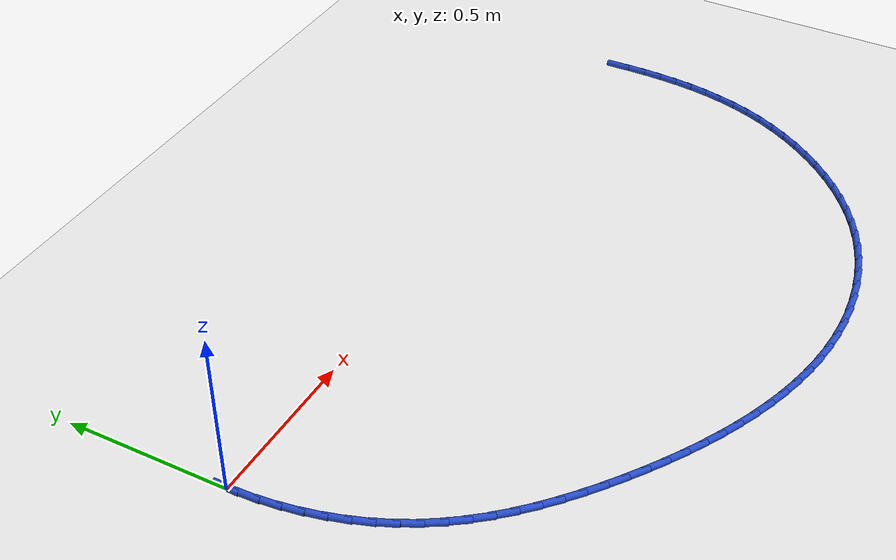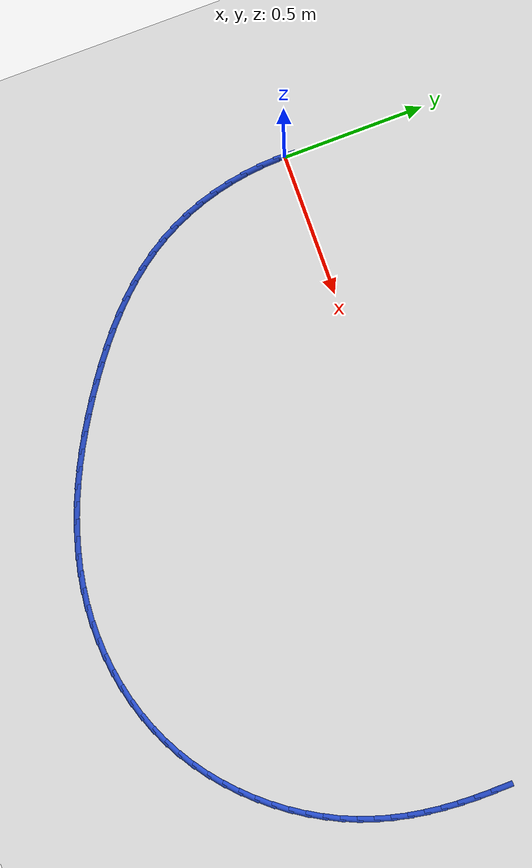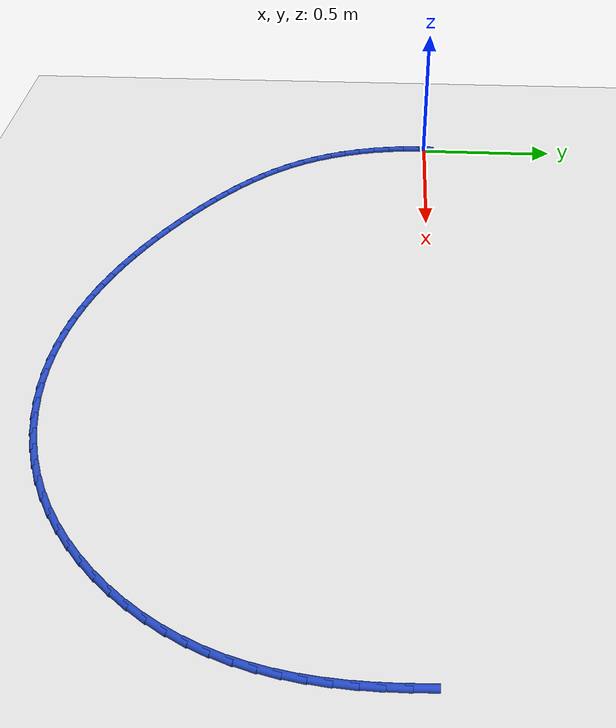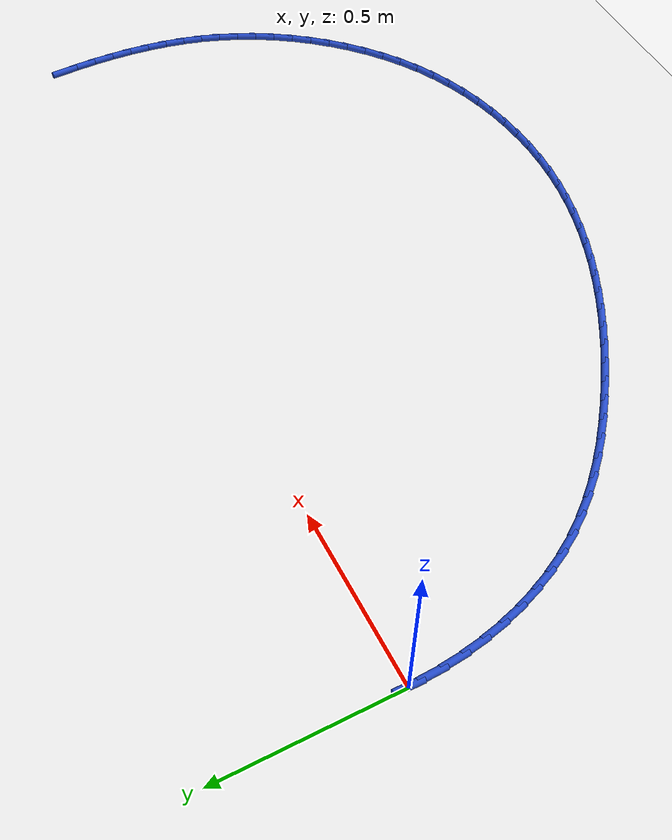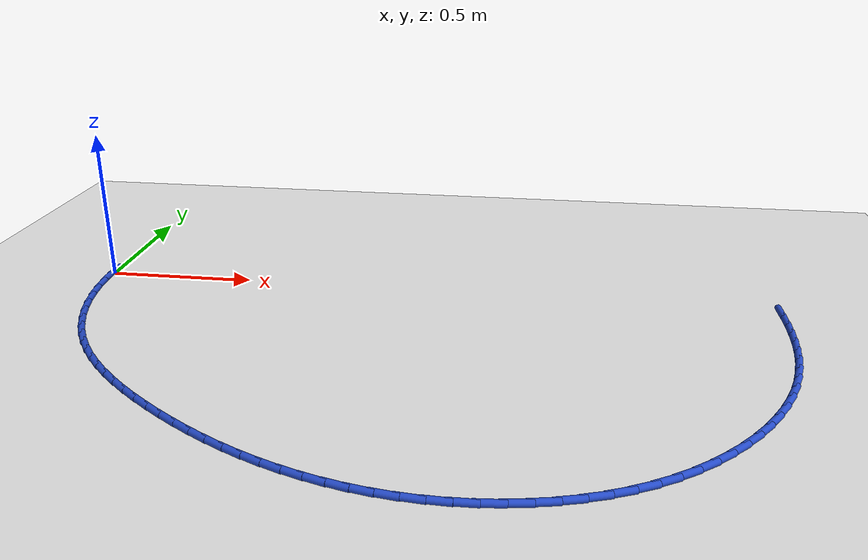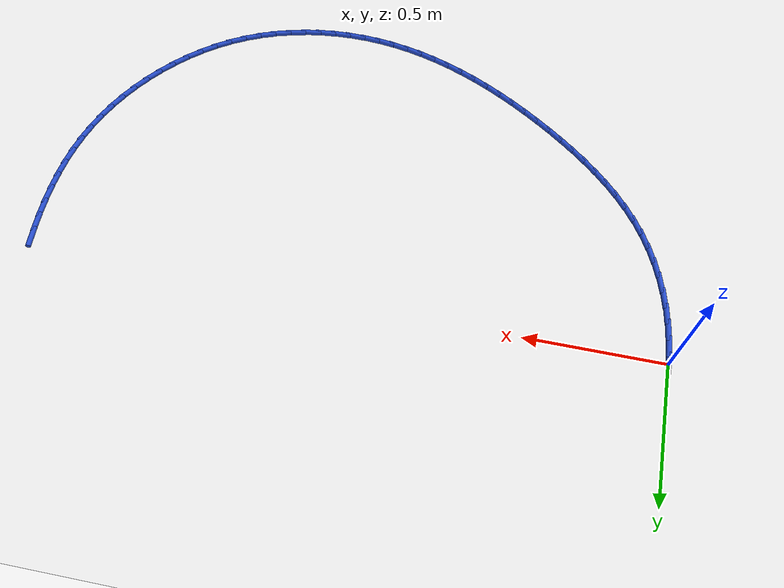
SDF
<sdf version="1.6">
 <world name="default">
  <model name="ground_plane">
   <static>1</static>
   <link name="link">
    <collision name="collision">
     <geometry><plane><normal>0 0 1</normal><size>100 100</size></plane></geometry>
     <surface><friction><ode><mu>100</mu><mu2>50</mu2></ode></friction></surface>
    </collision>
    <visual name="visual">
     <cast_shadows>0</cast_shadows>
     <geometry><plane><normal>0 0 1</normal><size>100 100</size></plane></geometry>
     <material>
      <script><uri>file://media/materials/scripts/gazebo.material</uri><name>Gazebo/WhiteGlow</name></script>
     </material>
    </visual>
   </link>
  </model>
  <model name="line">
   <link name="link_60">
    <pose>2.2833765650378806 -0.04294094203351848 0.01 0 1.57 -1.5476891635076686</pose>
    <collision name="collision">
     <geometry><cylinder><radius>0.01</radius><length>0.08</length></cylinder></geometry>
    </collision>
    <visual name="visual">
     <material>
      <script><name>Gazebo/Blue</name><uri>file://media/materials/scripts/gazebo.material</uri></script>
     </material>
     <geometry><cylinder><radius>0.01</radius><length>0.08</length></cylinder></geometry>
    </visual>
   </link>
   <link name="link_61">
    <pose>2.284784273148727 -0.10385095249546433 0.01 0 1.57 1.5625265852752879</pose>
    <collision name="collision">
     <geometry><cylinder><radius>0.01</radius><length>0.08</length></cylinder></geometry>
    </collision>
    <visual name="visual">
     <material>
      <script><name>Gazebo/Blue</name><uri>file://media/materials/scripts/gazebo.material</uri></script>
     </material>
     <geometry><cylinder><radius>0.01</radius><length>0.08</length></cylinder></geometry>
    </visual>
   </link>
   <link name="link_62">
    <pose>2.284286793929288 -0.16400614326748772 0.01 0 1.57 1.5263745527881771</pose>
    <collision name="collision">
     <geometry><cylinder><radius>0.01</radius><length>0.08</length></cylinder></geometry>
    </collision>
    <visual name="visual">
     <material>
      <script><name>Gazebo/Blue</name><uri>file://media/materials/scripts/gazebo.material</uri></script>
     </material>
     <geometry><cylinder><radius>0.01</radius><length>0.08</length></cylinder></geometry>
    </visual>
   </link>
   <link name="link_63">
    <pose>2.281646548777247 -0.2234028765712623 0.01 0 1.57 1.4853796885724229</pose>
    <collision name="collision">
     <geometry><cylinder><radius>0.01</radius><length>0.08</length></cylinder></geometry>
    </collision>
    <visual name="visual">
     <material>
      <script><name>Gazebo/Blue</name><uri>file://media/materials/scripts/gazebo.material</uri></script>
     </material>
     <geometry><cylinder><radius>0.01</radius><length>0.08</length></cylinder></geometry>
    </visual>
   </link>
   <link name="link_64">
    <pose>2.276625959090288 -0.282037514628459 0.01 0 1.57 1.4395581683365772</pose>
    <collision name="collision">
     <geometry><cylinder><radius>0.01</radius><length>0.08</length></cylinder></geometry>
    </collision>
    <visual name="visual">
     <material>
      <script><name>Gazebo/Blue</name><uri>file://media/materials/scripts/gazebo.material</uri></script>
     </material>
     <geometry><cylinder><radius>0.01</radius><length>0.08</length></cylinder></geometry>
    </visual>
   </link>
   <link name="link_65">
    <pose>2.268987446266097 -0.3399064196607515 0.01 0 1.57 1.3890400034314572</pose>
    <collision name="collision">
     <geometry><cylinder><radius>0.01</radius><length>0.08</length></cylinder></geometry>
    </collision>
    <visual name="visual">
     <material>
      <script><name>Gazebo/Blue</name><uri>file://media/materials/scripts/gazebo.material</uri></script>
     </material>
     <geometry><cylinder><radius>0.01</radius><length>0.08</length></cylinder></geometry>
    </visual>
   </link>
   <link name="link_66">
    <pose>2.2584934317023566 -0.3970059538898132 0.01 0 1.57 1.334097936344113</pose>
    <collision name="collision">
     <geometry><cylinder><radius>0.01</radius><length>0.08</length></cylinder></geometry>
    </collision>
    <visual name="visual">
     <material>
      <script><name>Gazebo/Blue</name><uri>file://media/materials/scripts/gazebo.material</uri></script>
     </material>
     <geometry><cylinder><radius>0.01</radius><length>0.08</length></cylinder></geometry>
    </visual>
   </link>
   <link name="link_67">
    <pose>2.244906336796752 -0.45333247953731526 0.01 0 1.57 1.275169837606391</pose>
    <collision name="collision">
     <geometry><cylinder><radius>0.01</radius><length>0.08</length></cylinder></geometry>
    </collision>
    <visual name="visual">
     <material>
      <script><name>Gazebo/Blue</name><uri>file://media/materials/scripts/gazebo.material</uri></script>
     </material>
     <geometry><cylinder><radius>0.01</radius><length>0.08</length></cylinder></geometry>
    </visual>
   </link>
   <link name="link_68">
    <pose>2.227988582946968 -0.5088823588249314 0.01 0 1.57 1.2128688071217697</pose>
    <collision name="collision">
     <geometry><cylinder><radius>0.01</radius><length>0.08</length></cylinder></geometry>
    </collision>
    <visual name="visual">
     <material>
      <script><name>Gazebo/Blue</name><uri>file://media/materials/scripts/gazebo.material</uri></script>
     </material>
     <geometry><cylinder><radius>0.01</radius><length>0.08</length></cylinder></geometry>
    </visual>
   </link>
   <link name="link_69">
    <pose>2.2075026570277307 -0.5636519113125874 0.01 0 1.57 1.1489598721346916</pose>
    <collision name="collision">
     <geometry><cylinder><radius>0.01</radius><length>0.08</length></cylinder></geometry>
    </collision>
    <visual name="visual">
     <material>
      <script><name>Gazebo/Blue</name><uri>file://media/materials/scripts/gazebo.material</uri></script>
     </material>
     <geometry><cylinder><radius>0.01</radius><length>0.08</length></cylinder></geometry>
    </visual>
   </link>
   <link name="link_70">
    <pose>2.183301686875975 -0.6175783991927888 0.01 0 1.57 1.086622261071395</pose>
    <collision name="collision">
     <geometry><cylinder><radius>0.01</radius><length>0.08</length></cylinder></geometry>
    </collision>
    <visual name="visual">
     <material>
      <script><name>Gazebo/Blue</name><uri>file://media/materials/scripts/gazebo.material</uri></script>
     </material>
     <geometry><cylinder><radius>0.01</radius><length>0.08</length></cylinder></geometry>
    </visual>
   </link>
   <link name="link_71">
    <pose>2.15550933899885 -0.6704228144457689 0.01 0 1.57 1.025884309084471</pose>
    <collision name="collision">
     <geometry><cylinder><radius>0.01</radius><length>0.08</length></cylinder></geometry>
    </collision>
    <visual name="visual">
     <material>
      <script><name>Gazebo/Blue</name><uri>file://media/materials/scripts/gazebo.material</uri></script>
     </material>
     <geometry><cylinder><radius>0.01</radius><length>0.08</length></cylinder></geometry>
    </visual>
   </link>
   <link name="link_72">
    <pose>2.1242995328296934 -0.721913406619936 0.01 0 1.57 0.9661821219079965</pose>
    <collision name="collision">
     <geometry><cylinder><radius>0.01</radius><length>0.08</length></cylinder></geometry>
    </collision>
    <visual name="visual">
     <material>
      <script><name>Gazebo/Blue</name><uri>file://media/materials/scripts/gazebo.material</uri></script>
     </material>
     <geometry><cylinder><radius>0.01</radius><length>0.08</length></cylinder></geometry>
    </visual>
   </link>
   <link name="link_73">
    <pose>2.089846187801841 -0.771778425263697 0.01 0 1.57 0.9069696096256715</pose>
    <collision name="collision">
     <geometry><cylinder><radius>0.01</radius><length>0.08</length></cylinder></geometry>
    </collision>
    <visual name="visual">
     <material>
      <script><name>Gazebo/Blue</name><uri>file://media/materials/scripts/gazebo.material</uri></script>
     </material>
     <geometry><cylinder><radius>0.01</radius><length>0.08</length></cylinder></geometry>
    </visual>
   </link>
   <link name="link_74">
    <pose>2.052323223348629 -0.8197461199254599 0.01 0 1.57 0.8477173297517181</pose>
    <collision name="collision">
     <geometry><cylinder><radius>0.01</radius><length>0.08</length></cylinder></geometry>
    </collision>
    <visual name="visual">
     <material>
      <script><name>Gazebo/Blue</name><uri>file://media/materials/scripts/gazebo.material</uri></script>
     </material>
     <geometry><cylinder><radius>0.01</radius><length>0.08</length></cylinder></geometry>
    </visual>
   </link>
   <link name="link_75">
    <pose>2.011904558903397 -0.8655447401536306 0.01 0 1.57 0.7879109299086126</pose>
    <collision name="collision">
     <geometry><cylinder><radius>0.01</radius><length>0.08</length></cylinder></geometry>
    </collision>
    <visual name="visual">
     <material>
      <script><name>Gazebo/Blue</name><uri>file://media/materials/scripts/gazebo.material</uri></script>
     </material>
     <geometry><cylinder><radius>0.01</radius><length>0.08</length></cylinder></geometry>
    </visual>
   </link>
   <link name="link_76">
    <pose>1.968764113899479 -0.9089025354966167 0.01 0 1.57 0.7270504731540672</pose>
    <collision name="collision">
     <geometry><cylinder><radius>0.01</radius><length>0.08</length></cylinder></geometry>
    </collision>
    <visual name="visual">
     <material>
      <script><name>Gazebo/Blue</name><uri>file://media/materials/scripts/gazebo.material</uri></script>
     </material>
     <geometry><cylinder><radius>0.01</radius><length>0.08</length></cylinder></geometry>
    </visual>
   </link>
   <link name="link_77">
    <pose>1.9230758077702141 -0.949547755502826 0.01 0 1.57 0.6646518316766894</pose>
    <collision name="collision">
     <geometry><cylinder><radius>0.01</radius><length>0.08</length></cylinder></geometry>
    </collision>
    <visual name="visual">
     <material>
      <script><name>Gazebo/Blue</name><uri>file://media/materials/scripts/gazebo.material</uri></script>
     </material>
     <geometry><cylinder><radius>0.01</radius><length>0.08</length></cylinder></geometry>
    </visual>
   </link>
   <link name="link_78">
    <pose>1.875013559948938 -0.9872086497206658 0.01 0 1.57 0.600251341152327</pose>
    <collision name="collision">
     <geometry><cylinder><radius>0.01</radius><length>0.08</length></cylinder></geometry>
    </collision>
    <visual name="visual">
     <material>
      <script><name>Gazebo/Blue</name><uri>file://media/materials/scripts/gazebo.material</uri></script>
     </material>
     <geometry><cylinder><radius>0.01</radius><length>0.08</length></cylinder></geometry>
    </visual>
   </link>
   <link name="link_79">
    <pose>1.8247512898689886 -1.0216134676985424 0.01 0 1.57 0.53341494794907</pose>
    <collision name="collision">
     <geometry><cylinder><radius>0.01</radius><length>0.08</length></cylinder></geometry>
    </collision>
    <visual name="visual">
     <material>
      <script><name>Gazebo/Blue</name><uri>file://media/materials/scripts/gazebo.material</uri></script>
     </material>
     <geometry><cylinder><radius>0.01</radius><length>0.08</length></cylinder></geometry>
    </visual>
   </link>
   <link name="link_80">
    <pose>1.7724629169637025 -1.0524904589848634 0.01 0 1.57 0.464313737676006</pose>
    <collision name="collision">
     <geometry><cylinder><radius>0.01</radius><length>0.08</length></cylinder></geometry>
    </collision>
    <visual name="visual">
     <material>
      <script><name>Gazebo/Blue</name><uri>file://media/materials/scripts/gazebo.material</uri></script>
     </material>
     <geometry><cylinder><radius>0.01</radius><length>0.08</length></cylinder></geometry>
    </visual>
   </link>
   <link name="link_81">
    <pose>1.718331133251182 -1.0796014392818576 0.01 0 1.57 0.39616261071680425</pose>
    <collision name="collision">
     <geometry><cylinder><radius>0.01</radius><length>0.08</length></cylinder></geometry>
    </collision>
    <visual name="visual">
     <material>
      <script><name>Gazebo/Blue</name><uri>file://media/materials/scripts/gazebo.material</uri></script>
     </material>
     <geometry><cylinder><radius>0.01</radius><length>0.08</length></cylinder></geometry>
    </visual>
   </link>
   <link name="link_82">
    <pose>1.6625928053512251 -1.1029155101786456 0.01 0 1.57 0.3301798418398134</pose>
    <collision name="collision">
     <geometry><cylinder><radius>0.01</radius><length>0.08</length></cylinder></geometry>
    </collision>
    <visual name="visual">
     <material>
      <script><name>Gazebo/Blue</name><uri>file://media/materials/scripts/gazebo.material</uri></script>
     </material>
     <geometry><cylinder><radius>0.01</radius><length>0.08</length></cylinder></geometry>
    </visual>
   </link>
   <link name="link_83">
    <pose>1.6055054584047255 -1.1224808180516461 0.01 0 1.57 0.26621848396671943</pose>
    <collision name="collision">
     <geometry><cylinder><radius>0.01</radius><length>0.08</length></cylinder></geometry>
    </collision>
    <visual name="visual">
     <material>
      <script><name>Gazebo/Blue</name><uri>file://media/materials/scripts/gazebo.material</uri></script>
     </material>
     <geometry><cylinder><radius>0.01</radius><length>0.08</length></cylinder></geometry>
    </visual>
   </link>
   <link name="link_84">
    <pose>1.5473266583820255 -1.1383456655011892 0.01 0 1.57 0.20406946122768832</pose>
    <collision name="collision">
     <geometry><cylinder><radius>0.01</radius><length>0.08</length></cylinder></geometry>
    </collision>
    <visual name="visual">
     <material>
      <script><name>Gazebo/Blue</name><uri>file://media/materials/scripts/gazebo.material</uri></script>
     </material>
     <geometry><cylinder><radius>0.01</radius><length>0.08</length></cylinder></geometry>
    </visual>
   </link>
   <link name="link_85">
    <pose>1.4883139712534659 -1.1505583551276037 0.01 0 1.57 0.14347746709683598</pose>
    <collision name="collision">
     <geometry><cylinder><radius>0.01</radius><length>0.08</length></cylinder></geometry>
    </collision>
    <visual name="visual">
     <material>
      <script><name>Gazebo/Blue</name><uri>file://media/materials/scripts/gazebo.material</uri></script>
     </material>
     <geometry><cylinder><radius>0.01</radius><length>0.08</length></cylinder></geometry>
    </visual>
   </link>
   <link name="link_86">
    <pose>1.42872496298939 -1.159167189531218 0.01 0 1.57 0.08415182832487526</pose>
    <collision name="collision">
     <geometry><cylinder><radius>0.01</radius><length>0.08</length></cylinder></geometry>
    </collision>
    <visual name="visual">
     <material>
      <script><name>Gazebo/Blue</name><uri>file://media/materials/scripts/gazebo.material</uri></script>
     </material>
     <geometry><cylinder><radius>0.01</radius><length>0.08</length></cylinder></geometry>
    </visual>
   </link>
   <link name="link_87">
    <pose>1.368817199560138 -1.164220471312361 0.01 0 1.57 0.025774827002008362</pose>
    <collision name="collision">
     <geometry><cylinder><radius>0.01</radius><length>0.08</length></cylinder></geometry>
    </collision>
    <visual name="visual">
     <material>
      <script><name>Gazebo/Blue</name><uri>file://media/materials/scripts/gazebo.material</uri></script>
     </material>
     <geometry><cylinder><radius>0.01</radius><length>0.08</length></cylinder></geometry>
    </visual>
   </link>
   <link name="link_88">
    <pose>1.3088482469360523 -1.1657665030713618 0.01 0 1.57 -0.031992313580031656</pose>
    <collision name="collision">
     <geometry><cylinder><radius>0.01</radius><length>0.08</length></cylinder></geometry>
    </collision>
    <visual name="visual">
     <material>
      <script><name>Gazebo/Blue</name><uri>file://media/materials/scripts/gazebo.material</uri></script>
     </material>
     <geometry><cylinder><radius>0.01</radius><length>0.08</length></cylinder></geometry>
    </visual>
   </link>
   <link name="link_89">
    <pose>1.249075671087473 -1.163853587408549 0.01 0 1.57 -0.08934986433624453</pose>
    <collision name="collision">
     <geometry><cylinder><radius>0.01</radius><length>0.08</length></cylinder></geometry>
    </collision>
    <visual name="visual">
     <material>
      <script><name>Gazebo/Blue</name><uri>file://media/materials/scripts/gazebo.material</uri></script>
     </material>
     <geometry><cylinder><radius>0.01</radius><length>0.08</length></cylinder></geometry>
    </visual>
   </link>
   <link name="link_90">
    <pose>1.1897415533142344 -1.158537938854114 0.01 0 1.57 -0.145109546885971</pose>
    <collision name="collision">
     <geometry><cylinder><radius>0.01</radius><length>0.08</length></cylinder></geometry>
    </collision>
    <visual name="visual">
     <material>
      <script><name>Gazebo/Blue</name><uri>file://media/materials/scripts/gazebo.material</uri></script>
     </material>
     <geometry><cylinder><radius>0.01</radius><length>0.08</length></cylinder></geometry>
    </visual>
   </link>
   <link name="link_91">
    <pose>1.1309499026460037 -1.1499463202987539 0.01 0 1.57 -0.19839023252550084</pose>
    <collision name="collision">
     <geometry><cylinder><radius>0.01</radius><length>0.08</length></cylinder></geometry>
    </collision>
    <visual name="visual">
     <material>
      <script><name>Gazebo/Blue</name><uri>file://media/materials/scripts/gazebo.material</uri></script>
     </material>
     <geometry><cylinder><radius>0.01</radius><length>0.08</length></cylinder></geometry>
    </visual>
   </link>
   <link name="link_92">
    <pose>1.0727322128392667 -1.1382425464874504 0.01 0 1.57 -0.24903515370517798</pose>
    <collision name="collision">
     <geometry><cylinder><radius>0.01</radius><length>0.08</length></cylinder></geometry>
    </collision>
    <visual name="visual">
     <material>
      <script><name>Gazebo/Blue</name><uri>file://media/materials/scripts/gazebo.material</uri></script>
     </material>
     <geometry><cylinder><radius>0.01</radius><length>0.08</length></cylinder></geometry>
    </visual>
   </link>
   <link name="link_93">
    <pose>1.0151193345668326 -1.1235907607503441 0.01 0 1.57 -0.29696230076780267</pose>
    <collision name="collision">
     <geometry><cylinder><radius>0.01</radius><length>0.08</length></cylinder></geometry>
    </collision>
    <visual name="visual">
     <material>
      <script><name>Gazebo/Blue</name><uri>file://media/materials/scripts/gazebo.material</uri></script>
     </material>
     <geometry><cylinder><radius>0.01</radius><length>0.08</length></cylinder></geometry>
    </visual>
   </link>
   <link name="link_94">
    <pose>0.9581421185015135 -1.1061551064175772 0.01 0 1.57 -0.34214820563270787</pose>
    <collision name="collision">
     <geometry><cylinder><radius>0.01</radius><length>0.08</length></cylinder></geometry>
    </collision>
    <visual name="visual">
     <material>
      <script><name>Gazebo/Blue</name><uri>file://media/materials/scripts/gazebo.material</uri></script>
     </material>
     <geometry><cylinder><radius>0.01</radius><length>0.08</length></cylinder></geometry>
    </visual>
   </link>
   <link name="link_95">
    <pose>0.9018314153161185 -1.0860997268192907 0.01 0 1.57 -0.38461707874304524</pose>
    <collision name="collision">
     <geometry><cylinder><radius>0.01</radius><length>0.08</length></cylinder></geometry>
    </collision>
    <visual name="visual">
     <material>
      <script><name>Gazebo/Blue</name><uri>file://media/materials/scripts/gazebo.material</uri></script>
     </material>
     <geometry><cylinder><radius>0.01</radius><length>0.08</length></cylinder></geometry>
    </visual>
   </link>
   <link name="link_96">
    <pose>0.8462180756834575 -1.063588765285626 0.01 0 1.57 -0.42442999880463256</pose>
    <collision name="collision">
     <geometry><cylinder><radius>0.01</radius><length>0.08</length></cylinder></geometry>
    </collision>
    <visual name="visual">
     <material>
      <script><name>Gazebo/Blue</name><uri>file://media/materials/scripts/gazebo.material</uri></script>
     </material>
     <geometry><cylinder><radius>0.01</radius><length>0.08</length></cylinder></geometry>
    </visual>
   </link>
   <link name="link_97">
    <pose>0.7913329502763421 -1.0387863651467246 0.01 0 1.57 -0.461674937365693</pose>
    <collision name="collision">
     <geometry><cylinder><radius>0.01</radius><length>0.08</length></cylinder></geometry>
    </collision>
    <visual name="visual">
     <material>
      <script><name>Gazebo/Blue</name><uri>file://media/materials/scripts/gazebo.material</uri></script>
     </material>
     <geometry><cylinder><radius>0.01</radius><length>0.08</length></cylinder></geometry>
    </visual>
   </link>
   <link name="link_98">
    <pose>0.7372068897675809 -1.0118566697327274 0.01 0 1.57 -0.4964580577030813</pose>
    <collision name="collision">
     <geometry><cylinder><radius>0.01</radius><length>0.08</length></cylinder></geometry>
    </collision>
    <visual name="visual">
     <material>
      <script><name>Gazebo/Blue</name><uri>file://media/materials/scripts/gazebo.material</uri></script>
     </material>
     <geometry><cylinder><radius>0.01</radius><length>0.08</length></cylinder></geometry>
    </visual>
   </link>
   <link name="link_99">
    <pose>0.6838707448299847 -0.9829638223737758 0.01 0 1.57 -0.5288964579392702</pose>
    <collision name="collision">
     <geometry><cylinder><radius>0.01</radius><length>0.08</length></cylinder></geometry>
    </collision>
    <visual name="visual">
     <material>
      <script><name>Gazebo/Blue</name><uri>file://media/materials/scripts/gazebo.material</uri></script>
     </material>
     <geometry><cylinder><radius>0.01</radius><length>0.08</length></cylinder></geometry>
    </visual>
   </link>
   <link name="link_100">
    <pose>0.6313553661363632 -0.9522719664000108 0.01 0 1.57 -0.559112341501039</pose>
    <collision name="collision">
     <geometry><cylinder><radius>0.01</radius><length>0.08</length></cylinder></geometry>
    </collision>
    <visual name="visual">
     <material>
      <script><name>Gazebo/Blue</name><uri>file://media/materials/scripts/gazebo.material</uri></script>
     </material>
     <geometry><cylinder><radius>0.01</radius><length>0.08</length></cylinder></geometry>
    </visual>
   </link>
   <link name="link_101">
    <pose>0.5796916043595276 -0.9199452451415743 0.01 0 1.57 -0.5872284849037609</pose>
    <collision name="collision">
     <geometry><cylinder><radius>0.01</radius><length>0.08</length></cylinder></geometry>
    </collision>
    <visual name="visual">
     <material>
      <script><name>Gazebo/Blue</name><uri>file://media/materials/scripts/gazebo.material</uri></script>
     </material>
     <geometry><cylinder><radius>0.01</radius><length>0.08</length></cylinder></geometry>
    </visual>
   </link>
   <link name="link_102">
    <pose>0.5289103101722875 -0.8861478019286072 0.01 0 1.57 -0.6134442214437349</pose>
    <collision name="collision">
     <geometry><cylinder><radius>0.01</radius><length>0.08</length></cylinder></geometry>
    </collision>
    <visual name="visual">
     <material>
      <script><name>Gazebo/Blue</name><uri>file://media/materials/scripts/gazebo.material</uri></script>
     </material>
     <geometry><cylinder><radius>0.01</radius><length>0.08</length></cylinder></geometry>
    </visual>
   </link>
   <link name="link_103">
    <pose>0.47904564848602815 -0.851040191224123 0.01 0 1.57 -0.6406007695111777</pose>
    <collision name="collision">
     <geometry><cylinder><radius>0.01</radius><length>0.08</length></cylinder></geometry>
    </collision>
    <visual name="visual">
     <material>
      <script><name>Gazebo/Blue</name><uri>file://media/materials/scripts/gazebo.material</uri></script>
     </material>
     <geometry><cylinder><radius>0.01</radius><length>0.08</length></cylinder></geometry>
    </visual>
   </link>
   <link name="link_104">
    <pose>0.43024499508385 -0.8146603755995621 0.01 0 1.57 -0.6722124274351149</pose>
    <collision name="collision">
     <geometry><cylinder><radius>0.01</radius><length>0.08</length></cylinder></geometry>
    </collision>
    <visual name="visual">
     <material>
      <script><name>Gazebo/Blue</name><uri>file://media/materials/scripts/gazebo.material</uri></script>
     </material>
     <geometry><cylinder><radius>0.01</radius><length>0.08</length></cylinder></geometry>
    </visual>
   </link>
   <link name="link_105">
    <pose>0.38279433783738753 -0.7768962196908011 0.01 0 1.57 -0.7087184344358334</pose>
    <collision name="collision">
     <geometry><cylinder><radius>0.01</radius><length>0.08</length></cylinder></geometry>
    </collision>
    <visual name="visual">
     <material>
      <script><name>Gazebo/Blue</name><uri>file://media/materials/scripts/gazebo.material</uri></script>
     </material>
     <geometry><cylinder><radius>0.01</radius><length>0.08</length></cylinder></geometry>
    </visual>
   </link>
   <link name="link_106">
    <pose>0.3369881244464606 -0.7376264272967389 0.01 0 1.57 -0.7503670197653033</pose>
    <collision name="collision">
     <geometry><cylinder><radius>0.01</radius><length>0.08</length></cylinder></geometry>
    </collision>
    <visual name="visual">
     <material>
      <script><name>Gazebo/Blue</name><uri>file://media/materials/scripts/gazebo.material</uri></script>
     </material>
     <geometry><cylinder><radius>0.01</radius><length>0.08</length></cylinder></geometry>
    </visual>
   </link>
   <link name="link_107">
    <pose>0.29312080261088963 -0.6967297022162741 0.01 0 1.57 -0.7973931284812211</pose>
    <collision name="collision">
     <geometry><cylinder><radius>0.01</radius><length>0.08</length></cylinder></geometry>
    </collision>
    <visual name="visual">
     <material>
      <script><name>Gazebo/Blue</name><uri>file://media/materials/scripts/gazebo.material</uri></script>
     </material>
     <geometry><cylinder><radius>0.01</radius><length>0.08</length></cylinder></geometry>
    </visual>
   </link>
   <link name="link_108">
    <pose>0.2514868200304949 -0.6540847482483052 0.01 0 1.57 -0.8499845986067514</pose>
    <collision name="collision">
     <geometry><cylinder><radius>0.01</radius><length>0.08</length></cylinder></geometry>
    </collision>
    <visual name="visual">
     <material>
      <script><name>Gazebo/Blue</name><uri>file://media/materials/scripts/gazebo.material</uri></script>
     </material>
     <geometry><cylinder><radius>0.01</radius><length>0.08</length></cylinder></geometry>
    </visual>
   </link>
   <link name="link_109">
    <pose>0.21238062440509786 -0.6095702691917323 0.01 0 1.57 -0.9082386718855917</pose>
    <collision name="collision">
     <geometry><cylinder><radius>0.01</radius><length>0.08</length></cylinder></geometry>
    </collision>
    <visual name="visual">
     <material>
      <script><name>Gazebo/Blue</name><uri>file://media/materials/scripts/gazebo.material</uri></script>
     </material>
     <geometry><cylinder><radius>0.01</radius><length>0.08</length></cylinder></geometry>
    </visual>
   </link>
   <link name="link_110">
    <pose>0.17609666343451852 -0.5630649688454534 0.01 0 1.57 -0.9721101472316193</pose>
    <collision name="collision">
     <geometry><cylinder><radius>0.01</radius><length>0.08</length></cylinder></geometry>
    </collision>
    <visual name="visual">
     <material>
      <script><name>Gazebo/Blue</name><uri>file://media/materials/scripts/gazebo.material</uri></script>
     </material>
     <geometry><cylinder><radius>0.01</radius><length>0.08</length></cylinder></geometry>
    </visual>
   </link>
   <link name="link_111">
    <pose>0.1429293848185774 -0.5144475510083678 0.01 0 1.57 -1.0409126563478328</pose>
    <collision name="collision">
     <geometry><cylinder><radius>0.01</radius><length>0.08</length></cylinder></geometry>
    </collision>
    <visual name="visual">
     <material>
      <script><name>Gazebo/Blue</name><uri>file://media/materials/scripts/gazebo.material</uri></script>
     </material>
     <geometry><cylinder><radius>0.01</radius><length>0.08</length></cylinder></geometry>
    </visual>
   </link>
   <link name="link_112">
    <pose>0.1131551329192588 -0.4636174953969538 0.01 0 1.57 -1.1099316781231758</pose>
    <collision name="collision">
     <geometry><cylinder><radius>0.01</radius><length>0.08</length></cylinder></geometry>
    </collision>
    <visual name="visual">
     <material>
      <script><name>Gazebo/Blue</name><uri>file://media/materials/scripts/gazebo.material</uri></script>
     </material>
     <geometry><cylinder><radius>0.01</radius><length>0.08</length></cylinder></geometry>
    </visual>
   </link>
   <link name="link_113">
    <pose>0.08687054251724625 -0.41068052167545305 0.01 0 1.57 -1.1766363760786018</pose>
    <collision name="collision">
     <geometry><cylinder><radius>0.01</radius><length>0.08</length></cylinder></geometry>
    </collision>
    <visual name="visual">
     <material>
      <script><name>Gazebo/Blue</name><uri>file://media/materials/scripts/gazebo.material</uri></script>
     </material>
     <geometry><cylinder><radius>0.01</radius><length>0.08</length></cylinder></geometry>
    </visual>
   </link>
   <link name="link_114">
    <pose>0.06406940984763584 -0.35586037001717125 0.01 0 1.57 -1.2411148521926971</pose>
    <collision name="collision">
     <geometry><cylinder><radius>0.01</radius><length>0.08</length></cylinder></geometry>
    </collision>
    <visual name="visual">
     <material>
      <script><name>Gazebo/Blue</name><uri>file://media/materials/scripts/gazebo.material</uri></script>
     </material>
     <geometry><cylinder><radius>0.01</radius><length>0.08</length></cylinder></geometry>
    </visual>
   </link>
   <link name="link_115">
    <pose>0.044744320156669876 -0.2993821703614813 0.01 0 1.57 -1.3035397040051189</pose>
    <collision name="collision">
     <geometry><cylinder><radius>0.01</radius><length>0.08</length></cylinder></geometry>
    </collision>
    <visual name="visual">
     <material>
      <script><name>Gazebo/Blue</name><uri>file://media/materials/scripts/gazebo.material</uri></script>
     </material>
     <geometry><cylinder><radius>0.01</radius><length>0.08</length></cylinder></geometry>
    </visual>
   </link>
   <link name="link_116">
    <pose>0.02888785869059138 -0.24147105264775823 0.01 0 1.57 -1.3641236662681822</pose>
    <collision name="collision">
     <geometry><cylinder><radius>0.01</radius><length>0.08</length></cylinder></geometry>
    </collision>
    <visual name="visual">
     <material>
      <script><name>Gazebo/Blue</name><uri>file://media/materials/scripts/gazebo.material</uri></script>
     </material>
     <geometry><cylinder><radius>0.01</radius><length>0.08</length></cylinder></geometry>
    </visual>
   </link>
   <link name="link_117">
    <pose>0.016492610695642642 -0.18235214681537515 0.01 0 1.57 -1.4231072572547177</pose>
    <collision name="collision">
     <geometry><cylinder><radius>0.01</radius><length>0.08</length></cylinder></geometry>
    </collision>
    <visual name="visual">
     <material>
      <script><name>Gazebo/Blue</name><uri>file://media/materials/scripts/gazebo.material</uri></script>
     </material>
     <geometry><cylinder><radius>0.01</radius><length>0.08</length></cylinder></geometry>
    </visual>
   </link>
   <link name="link_118">
    <pose>0.007551161418066138 -0.12225058280370543 0.01 0 1.57 -1.4807488949753633</pose>
    <collision name="collision">
     <geometry><cylinder><radius>0.01</radius><length>0.08</length></cylinder></geometry>
    </collision>
    <visual name="visual">
     <material>
      <script><name>Gazebo/Blue</name><uri>file://media/materials/scripts/gazebo.material</uri></script>
     </material>
     <geometry><cylinder><radius>0.01</radius><length>0.08</length></cylinder></geometry>
    </visual>
   </link>
   <link name="link_119">
    <pose>0.0020560961041043747 -0.061391490552121966 0.01 0 1.57 -1.5373172918450855</pose>
    <collision name="collision">
     <geometry><cylinder><radius>0.01</radius><length>0.08</length></cylinder></geometry>
    </collision>
    <visual name="visual">
     <material>
      <script><name>Gazebo/Blue</name><uri>file://media/materials/scripts/gazebo.material</uri></script>
     </material>
     <geometry><cylinder><radius>0.01</radius><length>0.08</length></cylinder></geometry>
    </visual>
   </link>
   <link name="link_120">
    <pose>1.3877787807814457e-17 2.7755575615628914e-17 0.01 0 1.57 1.5485068904420287</pose>
    <collision name="collision">
     <geometry><cylinder><radius>0.01</radius><length>0.08</length></cylinder></geometry>
    </collision>
    <visual name="visual">
     <material>
      <script><name>Gazebo/Blue</name><uri>file://media/materials/scripts/gazebo.material</uri></script>
     </material>
     <geometry><cylinder><radius>0.01</radius><length>0.08</length></cylinder></geometry>
    </visual>
   </link>
  </model>
 </world>
</sdf>
